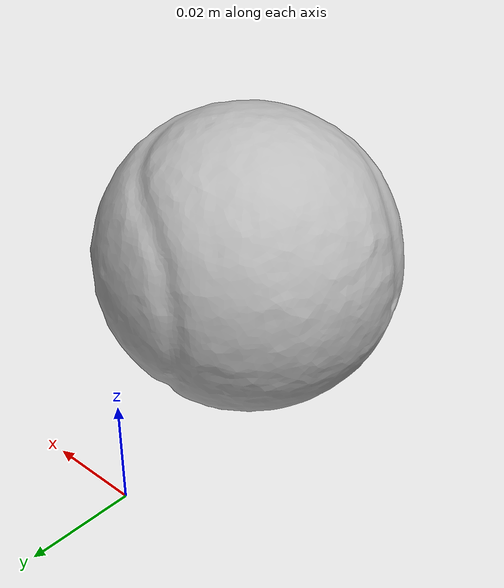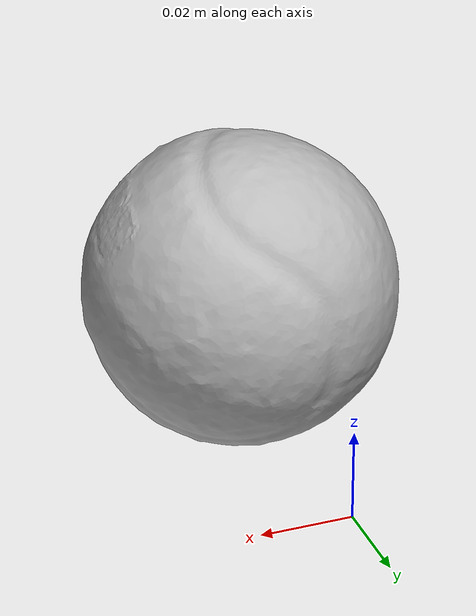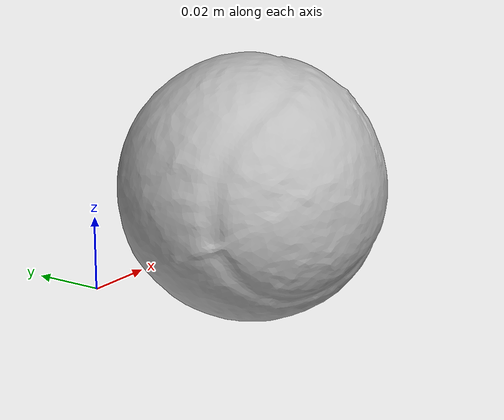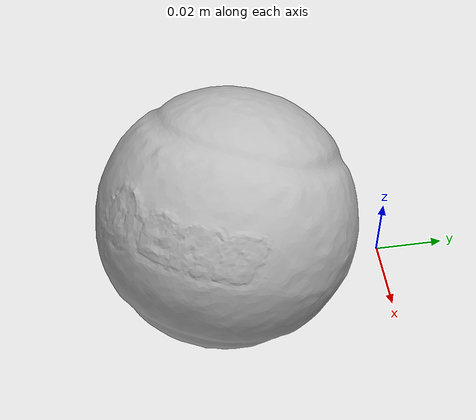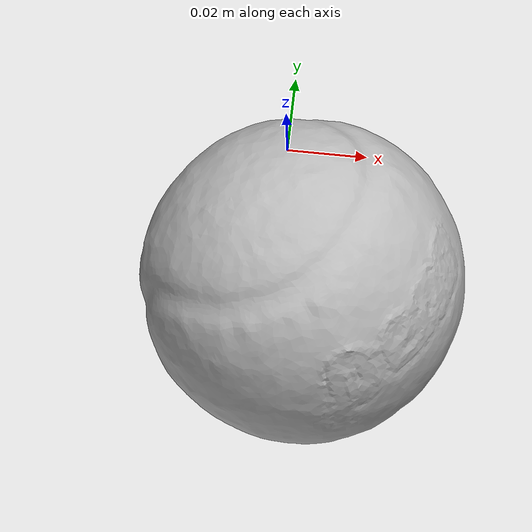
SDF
<?xml version='1.0'?>
<sdf version="1.4">
  <model name="tennis_ball">
    <static>false</static>
    <link name="link">
      <inertial>
        <pose>0.008233239762589124 -0.04419242630466529 0.03288662063700162 -2.9810379115872068 -1.0170287585971745 -2.748123242054123</pose>
        <mass>0.00015596837466282982</mass>
        <inertia>
          <ixx>6.98013142945436e-08</ixx>
          <ixy>6.5054433909225095e-24</ixy>
          <ixz>3.33428225752008e-24</ixz>
          <iyy>6.951004823297152e-08</iyy>
          <iyz>-2.046586203962286e-24</iyz>
          <izz>6.942650877097575e-08</izz>
        </inertia>
      </inertial>
      <collision name="collision">
        <geometry>
          <mesh>
            <!-- Use a downsampled mesh for collisions -->
            <uri>model://056_tennis_ball/google_16k/056_tennis_ball.obj</uri>
            </mesh>
        </geometry>
        <surface>
          <friction>
            <ode>
              <mu>0.9</mu>
              <mu2>0.9</mu2>
            </ode>
          </friction>
          <contact>
            <ode>
              <kp>1000000000000.0</kp>
              <kd>1</kd>
              <min_depth>0.0001</min_depth>
              <max_vel>0.01</max_vel>
            </ode>
          </contact>
          <bounce>
            <restitution_coefficient>0.1</restitution_coefficient>
            <threshold>1000.0</threshold>
          </bounce>
        </surface>
      </collision>
      <visual name="visual">
        <geometry>
          <mesh>
            <uri>model://056_tennis_ball/google_16k/056_tennis_ball.dae</uri>
            </mesh>
        </geometry>
      </visual>
    </link>
  </model>
</sdf>
